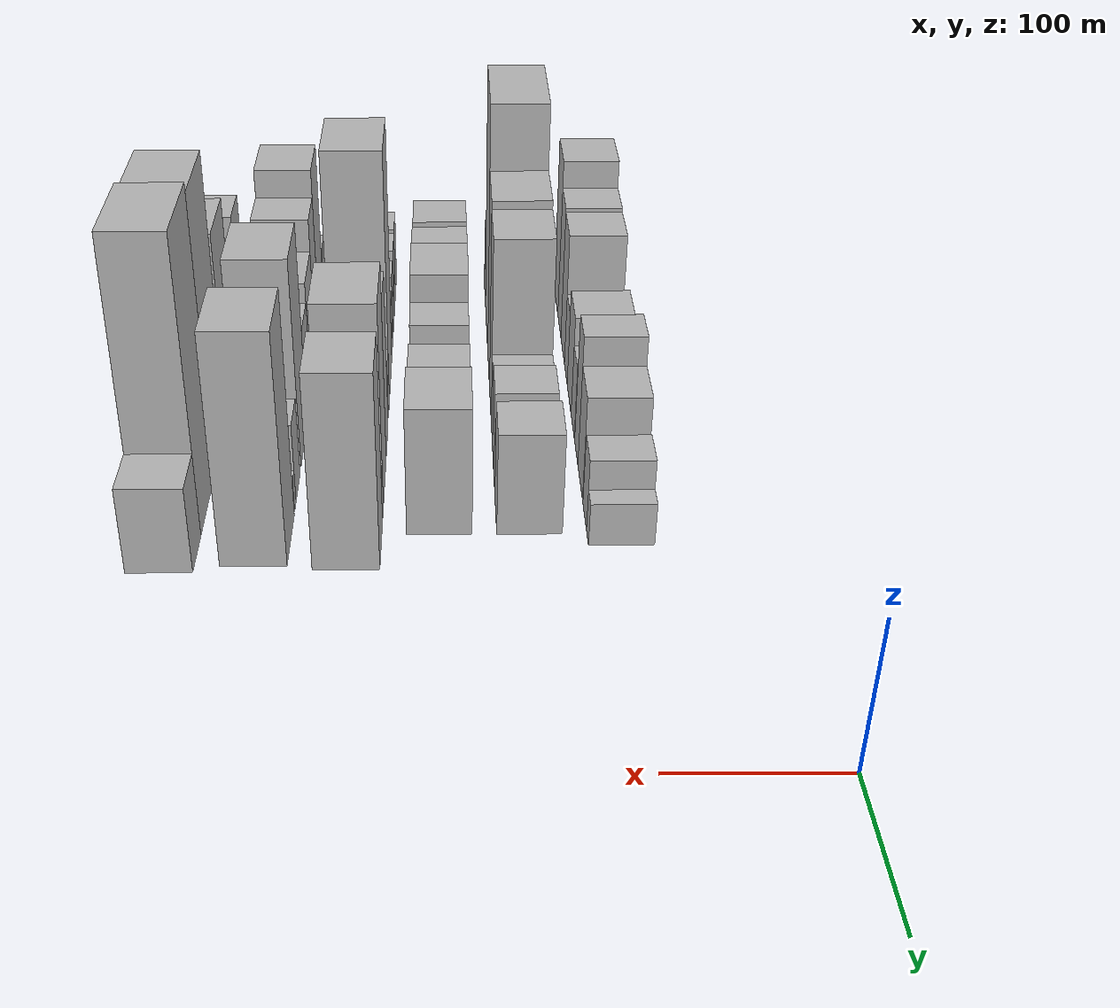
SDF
<sdf version="1.6">
 <world name="default">
  <model name="building_12">
   <static>1</static>
   <pose>100.0000 -498.8971 0 0.000000 0.000000 0.000000</pose>
   <link name="link">
    <pose>0 0 63.00 0 0 0</pose>
    <collision name="collision"><geometry><box><size>40.0000 42.6172 126.0000</size></box></geometry></collision>
    <visual name="visual">
     <cast_shadows>0</cast_shadows>
     <geometry><box><size>40.0000 42.6172 126.0000</size></box></geometry>
     <material>
      <script>
       <uri>model://HANNAS_wall/materials/scripts</uri>
       <uri>model://HANNAS_wall/materials/textures</uri>
       <name>vrc/HANNAS_wall</name>
      </script>
     </material>
    </visual>
   </link>
  </model>
  <model name="building_13">
   <static>1</static>
   <pose>100.0000 -460.0980 0 0.000000 0.000000 0.000000</pose>
   <link name="link">
    <pose>0 0 52.50 0 0 0</pose>
    <collision name="collision"><geometry><box><size>40.0000 34.9809 105.0000</size></box></geometry></collision>
    <visual name="visual">
     <cast_shadows>0</cast_shadows>
     <geometry><box><size>40.0000 34.9809 105.0000</size></box></geometry>
     <material>
      <script>
       <uri>model://HANNAS_wall/materials/scripts</uri>
       <uri>model://HANNAS_wall/materials/textures</uri>
       <name>vrc/HANNAS_wall</name>
      </script>
     </material>
    </visual>
   </link>
  </model>
  <model name="building_14">
   <static>1</static>
   <pose>100.0000 -423.3521 0 0.000000 0.000000 0.000000</pose>
   <link name="link">
    <pose>0 0 51.00 0 0 0</pose>
    <collision name="collision"><geometry><box><size>40.0000 38.5110 102.0000</size></box></geometry></collision>
    <visual name="visual">
     <cast_shadows>0</cast_shadows>
     <geometry><box><size>40.0000 38.5110 102.0000</size></box></geometry>
     <material>
      <script>
       <uri>model://HANNAS_wall/materials/scripts</uri>
       <uri>model://HANNAS_wall/materials/textures</uri>
       <name>vrc/HANNAS_wall</name>
      </script>
     </material>
    </visual>
   </link>
  </model>
  <model name="building_15">
   <static>1</static>
   <pose>100.0000 -389.4801 0 0.000000 0.000000 0.000000</pose>
   <link name="link">
    <pose>0 0 28.50 0 0 0</pose>
    <collision name="collision"><geometry><box><size>40.0000 29.2329 57.0000</size></box></geometry></collision>
    <visual name="visual">
     <cast_shadows>0</cast_shadows>
     <geometry><box><size>40.0000 29.2329 57.0000</size></box></geometry>
     <material>
      <script>
       <uri>model://HANNAS_wall/materials/scripts</uri>
       <uri>model://HANNAS_wall/materials/textures</uri>
       <name>vrc/HANNAS_wall</name>
      </script>
     </material>
    </visual>
   </link>
  </model>
  <model name="building_16">
   <static>1</static>
   <pose>100.0000 -355.2615 0 0.000000 0.000000 0.000000</pose>
   <link name="link">
    <pose>0 0 37.50 0 0 0</pose>
    <collision name="collision"><geometry><box><size>40.0000 39.2045 75.0000</size></box></geometry></collision>
    <visual name="visual">
     <cast_shadows>0</cast_shadows>
     <geometry><box><size>40.0000 39.2045 75.0000</size></box></geometry>
     <material>
      <script>
       <uri>model://HANNAS_wall/materials/scripts</uri>
       <uri>model://HANNAS_wall/materials/textures</uri>
       <name>vrc/HANNAS_wall</name>
      </script>
     </material>
    </visual>
   </link>
  </model>
  <model name="building_17">
   <static>1</static>
   <pose>100.0000 -320.9686 0 0.000000 0.000000 0.000000</pose>
   <link name="link">
    <pose>0 0 27.00 0 0 0</pose>
    <collision name="collision"><geometry><box><size>40.0000 29.3813 54.0000</size></box></geometry></collision>
    <visual name="visual">
     <cast_shadows>0</cast_shadows>
     <geometry><box><size>40.0000 29.3813 54.0000</size></box></geometry>
     <material>
      <script>
       <uri>model://HANNAS_wall/materials/scripts</uri>
       <uri>model://HANNAS_wall/materials/textures</uri>
       <name>vrc/HANNAS_wall</name>
      </script>
     </material>
    </visual>
   </link>
  </model>
  <model name="building_18">
   <static>1</static>
   <pose>100.0000 -287.8208 0 0.000000 0.000000 0.000000</pose>
   <link name="link">
    <pose>0 0 48.00 0 0 0</pose>
    <collision name="collision"><geometry><box><size>40.0000 28.9144 96.0000</size></box></geometry></collision>
    <visual name="visual">
     <cast_shadows>0</cast_shadows>
     <geometry><box><size>40.0000 28.9144 96.0000</size></box></geometry>
     <material>
      <script>
       <uri>model://HANNAS_wall/materials/scripts</uri>
       <uri>model://HANNAS_wall/materials/textures</uri>
       <name>vrc/HANNAS_wall</name>
      </script>
     </material>
    </visual>
   </link>
  </model>
  <model name="building_19">
   <static>1</static>
   <pose>100.0000 -254.4728 0 0.000000 0.000000 0.000000</pose>
   <link name="link">
    <pose>0 0 37.50 0 0 0</pose>
    <collision name="collision"><geometry><box><size>40.0000 37.7816 75.0000</size></box></geometry></collision>
    <visual name="visual">
     <cast_shadows>0</cast_shadows>
     <geometry><box><size>40.0000 37.7816 75.0000</size></box></geometry>
     <material>
      <script>
       <uri>model://HANNAS_wall/materials/scripts</uri>
       <uri>model://HANNAS_wall/materials/textures</uri>
       <name>vrc/HANNAS_wall</name>
      </script>
     </material>
    </visual>
   </link>
  </model>
  <model name="building_20">
   <static>1</static>
   <pose>100.0000 -217.5189 0 0.000000 0.000000 0.000000</pose>
   <link name="link">
    <pose>0 0 25.50 0 0 0</pose>
    <collision name="collision"><geometry><box><size>40.0000 28.1261 51.0000</size></box></geometry></collision>
    <visual name="visual">
     <cast_shadows>0</cast_shadows>
     <geometry><box><size>40.0000 28.1261 51.0000</size></box></geometry>
     <material>
      <script>
       <uri>model://HANNAS_wall/materials/scripts</uri>
       <uri>model://HANNAS_wall/materials/textures</uri>
       <name>vrc/HANNAS_wall</name>
      </script>
     </material>
    </visual>
   </link>
  </model>
  <model name="building_21">
   <static>1</static>
   <pose>100.0000 -195.7694 0 0.000000 0.000000 0.000000</pose>
   <link name="link">
    <pose>0 0 15.00 0 0 0</pose>
    <collision name="collision"><geometry><box><size>40.0000 15.3728 30.0000</size></box></geometry></collision>
    <visual name="visual">
     <cast_shadows>0</cast_shadows>
     <geometry><box><size>40.0000 15.3728 30.0000</size></box></geometry>
     <material>
      <script>
       <uri>model://HANNAS_wall/materials/scripts</uri>
       <uri>model://HANNAS_wall/materials/textures</uri>
       <name>vrc/HANNAS_wall</name>
      </script>
     </material>
    </visual>
   </link>
  </model>
  <model name="building_65">
   <static>1</static>
   <pose>155.0000 -530.0611 0 0.000000 0.000000 0.000000</pose>
   <link name="link">
    <pose>0 0 7.50 0 0 0</pose>
    <collision name="collision"><geometry><box><size>40.0000 7.4572 15.0000</size></box></geometry></collision>
    <visual name="visual">
     <cast_shadows>0</cast_shadows>
     <geometry><box><size>40.0000 7.4572 15.0000</size></box></geometry>
     <material>
      <script>
       <uri>model://HANNAS_wall/materials/scripts</uri>
       <uri>model://HANNAS_wall/materials/textures</uri>
       <name>vrc/HANNAS_wall</name>
      </script>
     </material>
    </visual>
   </link>
  </model>
  <model name="building_66">
   <static>1</static>
   <pose>155.0000 -510.1614 0 0.000000 0.000000 0.000000</pose>
   <link name="link">
    <pose>0 0 28.50 0 0 0</pose>
    <collision name="collision"><geometry><box><size>40.0000 32.3422 57.0000</size></box></geometry></collision>
    <visual name="visual">
     <cast_shadows>0</cast_shadows>
     <geometry><box><size>40.0000 32.3422 57.0000</size></box></geometry>
     <material>
      <script>
       <uri>model://HANNAS_wall/materials/scripts</uri>
       <uri>model://HANNAS_wall/materials/textures</uri>
       <name>vrc/HANNAS_wall</name>
      </script>
     </material>
    </visual>
   </link>
  </model>
  <model name="building_67">
   <static>1</static>
   <pose>155.0000 -456.3791 0 0.000000 0.000000 0.000000</pose>
   <link name="link">
    <pose>0 0 96.00 0 0 0</pose>
    <collision name="collision"><geometry><box><size>40.0000 75.2224 192.0000</size></box></geometry></collision>
    <visual name="visual">
     <cast_shadows>0</cast_shadows>
     <geometry><box><size>40.0000 75.2224 192.0000</size></box></geometry>
     <material>
      <script>
       <uri>model://HANNAS_wall/materials/scripts</uri>
       <uri>model://HANNAS_wall/materials/textures</uri>
       <name>vrc/HANNAS_wall</name>
      </script>
     </material>
    </visual>
   </link>
  </model>
  <model name="building_68">
   <static>1</static>
   <pose>155.0000 -394.0830 0 0.000000 0.000000 0.000000</pose>
   <link name="link">
    <pose>0 0 72.00 0 0 0</pose>
    <collision name="collision"><geometry><box><size>40.0000 49.3697 144.0000</size></box></geometry></collision>
    <visual name="visual">
     <cast_shadows>0</cast_shadows>
     <geometry><box><size>40.0000 49.3697 144.0000</size></box></geometry>
     <material>
      <script>
       <uri>model://HANNAS_wall/materials/scripts</uri>
       <uri>model://HANNAS_wall/materials/textures</uri>
       <name>vrc/HANNAS_wall</name>
      </script>
     </material>
    </visual>
   </link>
  </model>
  <model name="building_69">
   <static>1</static>
   <pose>155.0000 -347.0937 0 0.000000 0.000000 0.000000</pose>
   <link name="link">
    <pose>0 0 69.00 0 0 0</pose>
    <collision name="collision"><geometry><box><size>40.0000 44.6090 138.0000</size></box></geometry></collision>
    <visual name="visual">
     <cast_shadows>0</cast_shadows>
     <geometry><box><size>40.0000 44.6090 138.0000</size></box></geometry>
     <material>
      <script>
       <uri>model://HANNAS_wall/materials/scripts</uri>
       <uri>model://HANNAS_wall/materials/textures</uri>
       <name>vrc/HANNAS_wall</name>
      </script>
     </material>
    </visual>
   </link>
  </model>
  <model name="building_70">
   <static>1</static>
   <pose>155.0000 -310.0410 0 0.000000 0.000000 0.000000</pose>
   <link name="link">
    <pose>0 0 27.00 0 0 0</pose>
    <collision name="collision"><geometry><box><size>40.0000 29.4963 54.0000</size></box></geometry></collision>
    <visual name="visual">
     <cast_shadows>0</cast_shadows>
     <geometry><box><size>40.0000 29.4963 54.0000</size></box></geometry>
     <material>
      <script>
       <uri>model://HANNAS_wall/materials/scripts</uri>
       <uri>model://HANNAS_wall/materials/textures</uri>
       <name>vrc/HANNAS_wall</name>
      </script>
     </material>
    </visual>
   </link>
  </model>
  <model name="building_71">
   <static>1</static>
   <pose>155.0000 -277.7967 0 0.000000 0.000000 0.000000</pose>
   <link name="link">
    <pose>0 0 31.50 0 0 0</pose>
    <collision name="collision"><geometry><box><size>40.0000 34.9924 63.0000</size></box></geometry></collision>
    <visual name="visual">
     <cast_shadows>0</cast_shadows>
     <geometry><box><size>40.0000 34.9924 63.0000</size></box></geometry>
     <material>
      <script>
       <uri>model://HANNAS_wall/materials/scripts</uri>
       <uri>model://HANNAS_wall/materials/textures</uri>
       <name>vrc/HANNAS_wall</name>
      </script>
     </material>
    </visual>
   </link>
  </model>
  <model name="building_72">
   <static>1</static>
   <pose>155.0000 -248.8470 0 0.000000 0.000000 0.000000</pose>
   <link name="link">
    <pose>0 0 21.00 0 0 0</pose>
    <collision name="collision"><geometry><box><size>40.0000 22.9069 42.0000</size></box></geometry></collision>
    <visual name="visual">
     <cast_shadows>0</cast_shadows>
     <geometry><box><size>40.0000 22.9069 42.0000</size></box></geometry>
     <material>
      <script>
       <uri>model://HANNAS_wall/materials/scripts</uri>
       <uri>model://HANNAS_wall/materials/textures</uri>
       <name>vrc/HANNAS_wall</name>
      </script>
     </material>
    </visual>
   </link>
  </model>
  <model name="building_73">
   <static>1</static>
   <pose>155.0000 -218.4721 0 0.000000 0.000000 0.000000</pose>
   <link name="link">
    <pose>0 0 36.00 0 0 0</pose>
    <collision name="collision"><geometry><box><size>40.0000 37.8429 72.0000</size></box></geometry></collision>
    <visual name="visual">
     <cast_shadows>0</cast_shadows>
     <geometry><box><size>40.0000 37.8429 72.0000</size></box></geometry>
     <material>
      <script>
       <uri>model://HANNAS_wall/materials/scripts</uri>
       <uri>model://HANNAS_wall/materials/textures</uri>
       <name>vrc/HANNAS_wall</name>
      </script>
     </material>
    </visual>
   </link>
  </model>
  <model name="building_111">
   <static>1</static>
   <pose>210.0000 -510.2477 0 0.000000 0.000000 0.000000</pose>
   <link name="link">
    <pose>0 0 36.00 0 0 0</pose>
    <collision name="collision"><geometry><box><size>40.0000 38.2786 72.0000</size></box></geometry></collision>
    <visual name="visual">
     <cast_shadows>0</cast_shadows>
     <geometry><box><size>40.0000 38.2786 72.0000</size></box></geometry>
     <material>
      <script>
       <uri>model://HANNAS_wall/materials/scripts</uri>
       <uri>model://HANNAS_wall/materials/textures</uri>
       <name>vrc/HANNAS_wall</name>
      </script>
     </material>
    </visual>
   </link>
  </model>
  <model name="building_112">
   <static>1</static>
   <pose>210.0000 -476.8454 0 0.000000 0.000000 0.000000</pose>
   <link name="link">
    <pose>0 0 13.50 0 0 0</pose>
    <collision name="collision"><geometry><box><size>40.0000 12.5260 27.0000</size></box></geometry></collision>
    <visual name="visual">
     <cast_shadows>0</cast_shadows>
     <geometry><box><size>40.0000 12.5260 27.0000</size></box></geometry>
     <material>
      <script>
       <uri>model://HANNAS_wall/materials/scripts</uri>
       <uri>model://HANNAS_wall/materials/textures</uri>
       <name>vrc/HANNAS_wall</name>
      </script>
     </material>
    </visual>
   </link>
  </model>
  <model name="building_113">
   <static>1</static>
   <pose>210.0000 -450.6379 0 0.000000 0.000000 0.000000</pose>
   <link name="link">
    <pose>0 0 39.00 0 0 0</pose>
    <collision name="collision"><geometry><box><size>40.0000 39.8889 78.0000</size></box></geometry></collision>
    <visual name="visual">
     <cast_shadows>0</cast_shadows>
     <geometry><box><size>40.0000 39.8889 78.0000</size></box></geometry>
     <material>
      <script>
       <uri>model://HANNAS_wall/materials/scripts</uri>
       <uri>model://HANNAS_wall/materials/textures</uri>
       <name>vrc/HANNAS_wall</name>
      </script>
     </material>
    </visual>
   </link>
  </model>
  <model name="building_114">
   <static>1</static>
   <pose>210.0000 -406.1249 0 0.000000 0.000000 0.000000</pose>
   <link name="link">
    <pose>0 0 42.00 0 0 0</pose>
    <collision name="collision"><geometry><box><size>40.0000 49.1372 84.0000</size></box></geometry></collision>
    <visual name="visual">
     <cast_shadows>0</cast_shadows>
     <geometry><box><size>40.0000 49.1372 84.0000</size></box></geometry>
     <material>
      <script>
       <uri>model://HANNAS_wall/materials/scripts</uri>
       <uri>model://HANNAS_wall/materials/textures</uri>
       <name>vrc/HANNAS_wall</name>
      </script>
     </material>
    </visual>
   </link>
  </model>
  <model name="building_115">
   <static>1</static>
   <pose>210.0000 -365.1897 0 0.000000 0.000000 0.000000</pose>
   <link name="link">
    <pose>0 0 31.50 0 0 0</pose>
    <collision name="collision"><geometry><box><size>40.0000 32.7331 63.0000</size></box></geometry></collision>
    <visual name="visual">
     <cast_shadows>0</cast_shadows>
     <geometry><box><size>40.0000 32.7331 63.0000</size></box></geometry>
     <material>
      <script>
       <uri>model://HANNAS_wall/materials/scripts</uri>
       <uri>model://HANNAS_wall/materials/textures</uri>
       <name>vrc/HANNAS_wall</name>
      </script>
     </material>
    </visual>
   </link>
  </model>
  <model name="building_116">
   <static>1</static>
   <pose>210.0000 -339.4777 0 0.000000 0.000000 0.000000</pose>
   <link name="link">
    <pose>0 0 16.50 0 0 0</pose>
    <collision name="collision"><geometry><box><size>40.0000 18.6907 33.0000</size></box></geometry></collision>
    <visual name="visual">
     <cast_shadows>0</cast_shadows>
     <geometry><box><size>40.0000 18.6907 33.0000</size></box></geometry>
     <material>
      <script>
       <uri>model://HANNAS_wall/materials/scripts</uri>
       <uri>model://HANNAS_wall/materials/textures</uri>
       <name>vrc/HANNAS_wall</name>
      </script>
     </material>
    </visual>
   </link>
  </model>
  <model name="building_117">
   <static>1</static>
   <pose>210.0000 -318.1316 0 0.000000 0.000000 0.000000</pose>
   <link name="link">
    <pose>0 0 10.50 0 0 0</pose>
    <collision name="collision"><geometry><box><size>40.0000 10.0016 21.0000</size></box></geometry></collision>
    <visual name="visual">
     <cast_shadows>0</cast_shadows>
     <geometry><box><size>40.0000 10.0016 21.0000</size></box></geometry>
     <material>
      <script>
       <uri>model://HANNAS_wall/materials/scripts</uri>
       <uri>model://HANNAS_wall/materials/textures</uri>
       <name>vrc/HANNAS_wall</name>
      </script>
     </material>
    </visual>
   </link>
  </model>
  <model name="building_118">
   <static>1</static>
   <pose>210.0000 -292.8404 0 0.000000 0.000000 0.000000</pose>
   <link name="link">
    <pose>0 0 34.50 0 0 0</pose>
    <collision name="collision"><geometry><box><size>40.0000 40.5808 69.0000</size></box></geometry></collision>
    <visual name="visual">
     <cast_shadows>0</cast_shadows>
     <geometry><box><size>40.0000 40.5808 69.0000</size></box></geometry>
     <material>
      <script>
       <uri>model://HANNAS_wall/materials/scripts</uri>
       <uri>model://HANNAS_wall/materials/textures</uri>
       <name>vrc/HANNAS_wall</name>
      </script>
     </material>
    </visual>
   </link>
  </model>
  <model name="building_119">
   <static>1</static>
   <pose>210.0000 -261.7344 0 0.000000 0.000000 0.000000</pose>
   <link name="link">
    <pose>0 0 15.00 0 0 0</pose>
    <collision name="collision"><geometry><box><size>40.0000 15.6313 30.0000</size></box></geometry></collision>
    <visual name="visual">
     <cast_shadows>0</cast_shadows>
     <geometry><box><size>40.0000 15.6313 30.0000</size></box></geometry>
     <material>
      <script>
       <uri>model://HANNAS_wall/materials/scripts</uri>
       <uri>model://HANNAS_wall/materials/textures</uri>
       <name>vrc/HANNAS_wall</name>
      </script>
     </material>
    </visual>
   </link>
  </model>
  <model name="building_120">
   <static>1</static>
   <pose>210.0000 -223.8262 0 0.000000 0.000000 0.000000</pose>
   <link name="link">
    <pose>0 0 45.00 0 0 0</pose>
    <collision name="collision"><geometry><box><size>40.0000 48.1849 90.0000</size></box></geometry></collision>
    <visual name="visual">
     <cast_shadows>0</cast_shadows>
     <geometry><box><size>40.0000 48.1849 90.0000</size></box></geometry>
     <material>
      <script>
       <uri>model://HANNAS_wall/materials/scripts</uri>
       <uri>model://HANNAS_wall/materials/textures</uri>
       <name>vrc/HANNAS_wall</name>
      </script>
     </material>
    </visual>
   </link>
  </model>
  <model name="building_159">
   <static>1</static>
   <pose>265.0000 -525.6639 0 0.000000 0.000000 0.000000</pose>
   <link name="link">
    <pose>0 0 28.50 0 0 0</pose>
    <collision name="collision"><geometry><box><size>40.0000 30.9749 57.0000</size></box></geometry></collision>
    <visual name="visual">
     <cast_shadows>0</cast_shadows>
     <geometry><box><size>40.0000 30.9749 57.0000</size></box></geometry>
     <material>
      <script>
       <uri>model://HANNAS_wall/materials/scripts</uri>
       <uri>model://HANNAS_wall/materials/textures</uri>
       <name>vrc/HANNAS_wall</name>
      </script>
     </material>
    </visual>
   </link>
  </model>
  <model name="building_160">
   <static>1</static>
   <pose>265.0000 -495.1890 0 0.000000 0.000000 0.000000</pose>
   <link name="link">
    <pose>0 0 27.00 0 0 0</pose>
    <collision name="collision"><geometry><box><size>40.0000 29.9749 54.0000</size></box></geometry></collision>
    <visual name="visual">
     <cast_shadows>0</cast_shadows>
     <geometry><box><size>40.0000 29.9749 54.0000</size></box></geometry>
     <material>
      <script>
       <uri>model://HANNAS_wall/materials/scripts</uri>
       <uri>model://HANNAS_wall/materials/textures</uri>
       <name>vrc/HANNAS_wall</name>
      </script>
     </material>
    </visual>
   </link>
  </model>
  <model name="building_161">
   <static>1</static>
   <pose>265.0000 -474.9305 0 0.000000 0.000000 0.000000</pose>
   <link name="link">
    <pose>0 0 12.00 0 0 0</pose>
    <collision name="collision"><geometry><box><size>40.0000 10.5421 24.0000</size></box></geometry></collision>
    <visual name="visual">
     <cast_shadows>0</cast_shadows>
     <geometry><box><size>40.0000 10.5421 24.0000</size></box></geometry>
     <material>
      <script>
       <uri>model://HANNAS_wall/materials/scripts</uri>
       <uri>model://HANNAS_wall/materials/textures</uri>
       <name>vrc/HANNAS_wall</name>
      </script>
     </material>
    </visual>
   </link>
  </model>
  <model name="building_162">
   <static>1</static>
   <pose>265.0000 -455.9233 0 0.000000 0.000000 0.000000</pose>
   <link name="link">
    <pose>0 0 25.50 0 0 0</pose>
    <collision name="collision"><geometry><box><size>40.0000 27.4722 51.0000</size></box></geometry></collision>
    <visual name="visual">
     <cast_shadows>0</cast_shadows>
     <geometry><box><size>40.0000 27.4722 51.0000</size></box></geometry>
     <material>
      <script>
       <uri>model://HANNAS_wall/materials/scripts</uri>
       <uri>model://HANNAS_wall/materials/textures</uri>
       <name>vrc/HANNAS_wall</name>
      </script>
     </material>
    </visual>
   </link>
  </model>
  <model name="building_163">
   <static>1</static>
   <pose>265.0000 -437.7830 0 0.000000 0.000000 0.000000</pose>
   <link name="link">
    <pose>0 0 9.00 0 0 0</pose>
    <collision name="collision"><geometry><box><size>40.0000 8.8083 18.0000</size></box></geometry></collision>
    <visual name="visual">
     <cast_shadows>0</cast_shadows>
     <geometry><box><size>40.0000 8.8083 18.0000</size></box></geometry>
     <material>
      <script>
       <uri>model://HANNAS_wall/materials/scripts</uri>
       <uri>model://HANNAS_wall/materials/textures</uri>
       <name>vrc/HANNAS_wall</name>
      </script>
     </material>
    </visual>
   </link>
  </model>
  <model name="building_164">
   <static>1</static>
   <pose>265.0000 -421.6040 0 0.000000 0.000000 0.000000</pose>
   <link name="link">
    <pose>0 0 22.50 0 0 0</pose>
    <collision name="collision"><geometry><box><size>40.0000 23.5497 45.0000</size></box></geometry></collision>
    <visual name="visual">
     <cast_shadows>0</cast_shadows>
     <geometry><box><size>40.0000 23.5497 45.0000</size></box></geometry>
     <material>
      <script>
       <uri>model://HANNAS_wall/materials/scripts</uri>
       <uri>model://HANNAS_wall/materials/textures</uri>
       <name>vrc/HANNAS_wall</name>
      </script>
     </material>
    </visual>
   </link>
  </model>
  <model name="building_165">
   <static>1</static>
   <pose>265.0000 -381.7592 0 0.000000 0.000000 0.000000</pose>
   <link name="link">
    <pose>0 0 93.00 0 0 0</pose>
    <collision name="collision"><geometry><box><size>40.0000 56.1399 186.0000</size></box></geometry></collision>
    <visual name="visual">
     <cast_shadows>0</cast_shadows>
     <geometry><box><size>40.0000 56.1399 186.0000</size></box></geometry>
     <material>
      <script>
       <uri>model://HANNAS_wall/materials/scripts</uri>
       <uri>model://HANNAS_wall/materials/textures</uri>
       <name>vrc/HANNAS_wall</name>
      </script>
     </material>
    </visual>
   </link>
  </model>
  <model name="building_166">
   <static>1</static>
   <pose>265.0000 -342.5719 0 0.000000 0.000000 0.000000</pose>
   <link name="link">
    <pose>0 0 21.00 0 0 0</pose>
    <collision name="collision"><geometry><box><size>40.0000 22.2348 42.0000</size></box></geometry></collision>
    <visual name="visual">
     <cast_shadows>0</cast_shadows>
     <geometry><box><size>40.0000 22.2348 42.0000</size></box></geometry>
     <material>
      <script>
       <uri>model://HANNAS_wall/materials/scripts</uri>
       <uri>model://HANNAS_wall/materials/textures</uri>
       <name>vrc/HANNAS_wall</name>
      </script>
     </material>
    </visual>
   </link>
  </model>
  <model name="building_167">
   <static>1</static>
   <pose>265.0000 -302.0483 0 0.000000 0.000000 0.000000</pose>
   <link name="link">
    <pose>0 0 58.50 0 0 0</pose>
    <collision name="collision"><geometry><box><size>40.0000 40.8124 117.0000</size></box></geometry></collision>
    <visual name="visual">
     <cast_shadows>0</cast_shadows>
     <geometry><box><size>40.0000 40.8124 117.0000</size></box></geometry>
     <material>
      <script>
       <uri>model://HANNAS_wall/materials/scripts</uri>
       <uri>model://HANNAS_wall/materials/textures</uri>
       <name>vrc/HANNAS_wall</name>
      </script>
     </material>
    </visual>
   </link>
  </model>
  <model name="building_168">
   <static>1</static>
   <pose>265.0000 -254.9798 0 0.000000 0.000000 0.000000</pose>
   <link name="link">
    <pose>0 0 72.00 0 0 0</pose>
    <collision name="collision"><geometry><box><size>40.0000 53.3245 144.0000</size></box></geometry></collision>
    <visual name="visual">
     <cast_shadows>0</cast_shadows>
     <geometry><box><size>40.0000 53.3245 144.0000</size></box></geometry>
     <material>
      <script>
       <uri>model://HANNAS_wall/materials/scripts</uri>
       <uri>model://HANNAS_wall/materials/textures</uri>
       <name>vrc/HANNAS_wall</name>
      </script>
     </material>
    </visual>
   </link>
  </model>
  <model name="building_169">
   <static>1</static>
   <pose>265.0000 -219.9789 0 0.000000 0.000000 0.000000</pose>
   <link name="link">
    <pose>0 0 16.50 0 0 0</pose>
    <collision name="collision"><geometry><box><size>40.0000 16.6774 33.0000</size></box></geometry></collision>
    <visual name="visual">
     <cast_shadows>0</cast_shadows>
     <geometry><box><size>40.0000 16.6774 33.0000</size></box></geometry>
     <material>
      <script>
       <uri>model://HANNAS_wall/materials/scripts</uri>
       <uri>model://HANNAS_wall/materials/textures</uri>
       <name>vrc/HANNAS_wall</name>
      </script>
     </material>
    </visual>
   </link>
  </model>
  <model name="building_170">
   <static>1</static>
   <pose>265.0000 -188.6385 0 0.000000 0.000000 0.000000</pose>
   <link name="link">
    <pose>0 0 67.50 0 0 0</pose>
    <collision name="collision"><geometry><box><size>40.0000 46.0034 135.0000</size></box></geometry></collision>
    <visual name="visual">
     <cast_shadows>0</cast_shadows>
     <geometry><box><size>40.0000 46.0034 135.0000</size></box></geometry>
     <material>
      <script>
       <uri>model://HANNAS_wall/materials/scripts</uri>
       <uri>model://HANNAS_wall/materials/textures</uri>
       <name>vrc/HANNAS_wall</name>
      </script>
     </material>
    </visual>
   </link>
  </model>
  <model name="building_212">
   <static>1</static>
   <pose>320.0000 -514.8476 0 0.000000 0.000000 0.000000</pose>
   <link name="link">
    <pose>0 0 22.50 0 0 0</pose>
    <collision name="collision"><geometry><box><size>40.0000 23.1286 45.0000</size></box></geometry></collision>
    <visual name="visual">
     <cast_shadows>0</cast_shadows>
     <geometry><box><size>40.0000 23.1286 45.0000</size></box></geometry>
     <material>
      <script>
       <uri>model://HANNAS_wall/materials/scripts</uri>
       <uri>model://HANNAS_wall/materials/textures</uri>
       <name>vrc/HANNAS_wall</name>
      </script>
     </material>
    </visual>
   </link>
  </model>
  <model name="building_213">
   <static>1</static>
   <pose>320.0000 -472.4350 0 0.000000 0.000000 0.000000</pose>
   <link name="link">
    <pose>0 0 66.00 0 0 0</pose>
    <collision name="collision"><geometry><box><size>40.0000 45.6965 132.0000</size></box></geometry></collision>
    <visual name="visual">
     <cast_shadows>0</cast_shadows>
     <geometry><box><size>40.0000 45.6965 132.0000</size></box></geometry>
     <material>
      <script>
       <uri>model://HANNAS_wall/materials/scripts</uri>
       <uri>model://HANNAS_wall/materials/textures</uri>
       <name>vrc/HANNAS_wall</name>
      </script>
     </material>
    </visual>
   </link>
  </model>
  <model name="building_214">
   <static>1</static>
   <pose>320.0000 -430.7443 0 0.000000 0.000000 0.000000</pose>
   <link name="link">
    <pose>0 0 55.50 0 0 0</pose>
    <collision name="collision"><geometry><box><size>40.0000 37.6849 111.0000</size></box></geometry></collision>
    <visual name="visual">
     <cast_shadows>0</cast_shadows>
     <geometry><box><size>40.0000 37.6849 111.0000</size></box></geometry>
     <material>
      <script>
       <uri>model://HANNAS_wall/materials/scripts</uri>
       <uri>model://HANNAS_wall/materials/textures</uri>
       <name>vrc/HANNAS_wall</name>
      </script>
     </material>
    </visual>
   </link>
  </model>
  <model name="building_215">
   <static>1</static>
   <pose>320.0000 -387.8975 0 0.000000 0.000000 0.000000</pose>
   <link name="link">
    <pose>0 0 43.50 0 0 0</pose>
    <collision name="collision"><geometry><box><size>40.0000 48.0086 87.0000</size></box></geometry></collision>
    <visual name="visual">
     <cast_shadows>0</cast_shadows>
     <geometry><box><size>40.0000 48.0086 87.0000</size></box></geometry>
     <material>
      <script>
       <uri>model://HANNAS_wall/materials/scripts</uri>
       <uri>model://HANNAS_wall/materials/textures</uri>
       <name>vrc/HANNAS_wall</name>
      </script>
     </material>
    </visual>
   </link>
  </model>
  <model name="building_216">
   <static>1</static>
   <pose>320.0000 -344.5888 0 0.000000 0.000000 0.000000</pose>
   <link name="link">
    <pose>0 0 36.00 0 0 0</pose>
    <collision name="collision"><geometry><box><size>40.0000 38.6090 72.0000</size></box></geometry></collision>
    <visual name="visual">
     <cast_shadows>0</cast_shadows>
     <geometry><box><size>40.0000 38.6090 72.0000</size></box></geometry>
     <material>
      <script>
       <uri>model://HANNAS_wall/materials/scripts</uri>
       <uri>model://HANNAS_wall/materials/textures</uri>
       <name>vrc/HANNAS_wall</name>
      </script>
     </material>
    </visual>
   </link>
  </model>
  <model name="building_217">
   <static>1</static>
   <pose>320.0000 -299.4168 0 0.000000 0.000000 0.000000</pose>
   <link name="link">
    <pose>0 0 75.00 0 0 0</pose>
    <collision name="collision"><geometry><box><size>40.0000 51.7349 150.0000</size></box></geometry></collision>
    <visual name="visual">
     <cast_shadows>0</cast_shadows>
     <geometry><box><size>40.0000 51.7349 150.0000</size></box></geometry>
     <material>
      <script>
       <uri>model://HANNAS_wall/materials/scripts</uri>
       <uri>model://HANNAS_wall/materials/textures</uri>
       <name>vrc/HANNAS_wall</name>
      </script>
     </material>
    </visual>
   </link>
  </model>
  <model name="building_218">
   <static>1</static>
   <pose>320.0000 -249.8588 0 0.000000 0.000000 0.000000</pose>
   <link name="link">
    <pose>0 0 28.50 0 0 0</pose>
    <collision name="collision"><geometry><box><size>40.0000 31.3810 57.0000</size></box></geometry></collision>
    <visual name="visual">
     <cast_shadows>0</cast_shadows>
     <geometry><box><size>40.0000 31.3810 57.0000</size></box></geometry>
     <material>
      <script>
       <uri>model://HANNAS_wall/materials/scripts</uri>
       <uri>model://HANNAS_wall/materials/textures</uri>
       <name>vrc/HANNAS_wall</name>
      </script>
     </material>
    </visual>
   </link>
  </model>
  <model name="building_219">
   <static>1</static>
   <pose>320.0000 -228.7647 0 0.000000 0.000000 0.000000</pose>
   <link name="link">
    <pose>0 0 12.00 0 0 0</pose>
    <collision name="collision"><geometry><box><size>40.0000 10.8071 24.0000</size></box></geometry></collision>
    <visual name="visual">
     <cast_shadows>0</cast_shadows>
     <geometry><box><size>40.0000 10.8071 24.0000</size></box></geometry>
     <material>
      <script>
       <uri>model://HANNAS_wall/materials/scripts</uri>
       <uri>model://HANNAS_wall/materials/textures</uri>
       <name>vrc/HANNAS_wall</name>
      </script>
     </material>
    </visual>
   </link>
  </model>
  <model name="building_220">
   <static>1</static>
   <pose>320.0000 -194.8582 0 0.000000 0.000000 0.000000</pose>
   <link name="link">
    <pose>0 0 79.50 0 0 0</pose>
    <collision name="collision"><geometry><box><size>40.0000 51.0060 159.0000</size></box></geometry></collision>
    <visual name="visual">
     <cast_shadows>0</cast_shadows>
     <geometry><box><size>40.0000 51.0060 159.0000</size></box></geometry>
     <material>
      <script>
       <uri>model://HANNAS_wall/materials/scripts</uri>
       <uri>model://HANNAS_wall/materials/textures</uri>
       <name>vrc/HANNAS_wall</name>
      </script>
     </material>
    </visual>
   </link>
  </model>
  <model name="building_260">
   <static>1</static>
   <pose>375.0000 -535.0621 0 0.000000 0.000000 0.000000</pose>
   <link name="link">
    <pose>0 0 19.50 0 0 0</pose>
    <collision name="collision"><geometry><box><size>40.0000 20.8523 39.0000</size></box></geometry></collision>
    <visual name="visual">
     <cast_shadows>0</cast_shadows>
     <geometry><box><size>40.0000 20.8523 39.0000</size></box></geometry>
     <material>
      <script>
       <uri>model://HANNAS_wall/materials/scripts</uri>
       <uri>model://HANNAS_wall/materials/textures</uri>
       <name>vrc/HANNAS_wall</name>
      </script>
     </material>
    </visual>
   </link>
  </model>
  <model name="building_261">
   <static>1</static>
   <pose>375.0000 -520.2220 0 0.000000 0.000000 0.000000</pose>
   <link name="link">
    <pose>0 0 9.00 0 0 0</pose>
    <collision name="collision"><geometry><box><size>40.0000 8.8279 18.0000</size></box></geometry></collision>
    <visual name="visual">
     <cast_shadows>0</cast_shadows>
     <geometry><box><size>40.0000 8.8279 18.0000</size></box></geometry>
     <material>
      <script>
       <uri>model://HANNAS_wall/materials/scripts</uri>
       <uri>model://HANNAS_wall/materials/textures</uri>
       <name>vrc/HANNAS_wall</name>
      </script>
     </material>
    </visual>
   </link>
  </model>
  <model name="building_262">
   <static>1</static>
   <pose>375.0000 -501.8140 0 0.000000 0.000000 0.000000</pose>
   <link name="link">
    <pose>0 0 27.00 0 0 0</pose>
    <collision name="collision"><geometry><box><size>40.0000 27.9879 54.0000</size></box></geometry></collision>
    <visual name="visual">
     <cast_shadows>0</cast_shadows>
     <geometry><box><size>40.0000 27.9879 54.0000</size></box></geometry>
     <material>
      <script>
       <uri>model://HANNAS_wall/materials/scripts</uri>
       <uri>model://HANNAS_wall/materials/textures</uri>
       <name>vrc/HANNAS_wall</name>
      </script>
     </material>
    </visual>
   </link>
  </model>
  <model name="building_263">
   <static>1</static>
   <pose>375.0000 -474.6879 0 0.000000 0.000000 0.000000</pose>
   <link name="link">
    <pose>0 0 22.50 0 0 0</pose>
    <collision name="collision"><geometry><box><size>40.0000 26.2644 45.0000</size></box></geometry></collision>
    <visual name="visual">
     <cast_shadows>0</cast_shadows>
     <geometry><box><size>40.0000 26.2644 45.0000</size></box></geometry>
     <material>
      <script>
       <uri>model://HANNAS_wall/materials/scripts</uri>
       <uri>model://HANNAS_wall/materials/textures</uri>
       <name>vrc/HANNAS_wall</name>
      </script>
     </material>
    </visual>
   </link>
  </model>
  <model name="building_264">
   <static>1</static>
   <pose>375.0000 -442.7083 0 0.000000 0.000000 0.000000</pose>
   <link name="link">
    <pose>0 0 54.00 0 0 0</pose>
    <collision name="collision"><geometry><box><size>40.0000 37.6949 108.0000</size></box></geometry></collision>
    <visual name="visual">
     <cast_shadows>0</cast_shadows>
     <geometry><box><size>40.0000 37.6949 108.0000</size></box></geometry>
     <material>
      <script>
       <uri>model://HANNAS_wall/materials/scripts</uri>
       <uri>model://HANNAS_wall/materials/textures</uri>
       <name>vrc/HANNAS_wall</name>
      </script>
     </material>
    </visual>
   </link>
  </model>
  <model name="building_265">
   <static>1</static>
   <pose>375.0000 -406.3445 0 0.000000 0.000000 0.000000</pose>
   <link name="link">
    <pose>0 0 30.00 0 0 0</pose>
    <collision name="collision"><geometry><box><size>40.0000 35.0328 60.0000</size></box></geometry></collision>
    <visual name="visual">
     <cast_shadows>0</cast_shadows>
     <geometry><box><size>40.0000 35.0328 60.0000</size></box></geometry>
     <material>
      <script>
       <uri>model://HANNAS_wall/materials/scripts</uri>
       <uri>model://HANNAS_wall/materials/textures</uri>
       <name>vrc/HANNAS_wall</name>
      </script>
     </material>
    </visual>
   </link>
  </model>
  <model name="building_266">
   <static>1</static>
   <pose>375.0000 -361.6403 0 0.000000 0.000000 0.000000</pose>
   <link name="link">
    <pose>0 0 69.00 0 0 0</pose>
    <collision name="collision"><geometry><box><size>40.0000 54.3757 138.0000</size></box></geometry></collision>
    <visual name="visual">
     <cast_shadows>0</cast_shadows>
     <geometry><box><size>40.0000 54.3757 138.0000</size></box></geometry>
     <material>
      <script>
       <uri>model://HANNAS_wall/materials/scripts</uri>
       <uri>model://HANNAS_wall/materials/textures</uri>
       <name>vrc/HANNAS_wall</name>
      </script>
     </material>
    </visual>
   </link>
  </model>
  <model name="building_267">
   <static>1</static>
   <pose>375.0000 -295.4333 0 0.000000 0.000000 0.000000</pose>
   <link name="link">
    <pose>0 0 99.00 0 0 0</pose>
    <collision name="collision"><geometry><box><size>40.0000 62.0382 198.0000</size></box></geometry></collision>
    <visual name="visual">
     <cast_shadows>0</cast_shadows>
     <geometry><box><size>40.0000 62.0382 198.0000</size></box></geometry>
     <material>
      <script>
       <uri>model://HANNAS_wall/materials/scripts</uri>
       <uri>model://HANNAS_wall/materials/textures</uri>
       <name>vrc/HANNAS_wall</name>
      </script>
     </material>
    </visual>
   </link>
  </model>
  <model name="building_268">
   <static>1</static>
   <pose>375.0000 -231.9762 0 0.000000 0.000000 0.000000</pose>
   <link name="link">
    <pose>0 0 102.00 0 0 0</pose>
    <collision name="collision"><geometry><box><size>40.0000 64.8761 204.0000</size></box></geometry></collision>
    <visual name="visual">
     <cast_shadows>0</cast_shadows>
     <geometry><box><size>40.0000 64.8761 204.0000</size></box></geometry>
     <material>
      <script>
       <uri>model://HANNAS_wall/materials/scripts</uri>
       <uri>model://HANNAS_wall/materials/textures</uri>
       <name>vrc/HANNAS_wall</name>
      </script>
     </material>
    </visual>
   </link>
  </model>
  <model name="building_269">
   <static>1</static>
   <pose>375.0000 -181.5445 0 0.000000 0.000000 0.000000</pose>
   <link name="link">
    <pose>0 0 30.00 0 0 0</pose>
    <collision name="collision"><geometry><box><size>40.0000 35.9872 60.0000</size></box></geometry></collision>
    <visual name="visual">
     <cast_shadows>0</cast_shadows>
     <geometry><box><size>40.0000 35.9872 60.0000</size></box></geometry>
     <material>
      <script>
       <uri>model://HANNAS_wall/materials/scripts</uri>
       <uri>model://HANNAS_wall/materials/textures</uri>
       <name>vrc/HANNAS_wall</name>
      </script>
     </material>
    </visual>
   </link>
  </model>
 </world>
</sdf>
